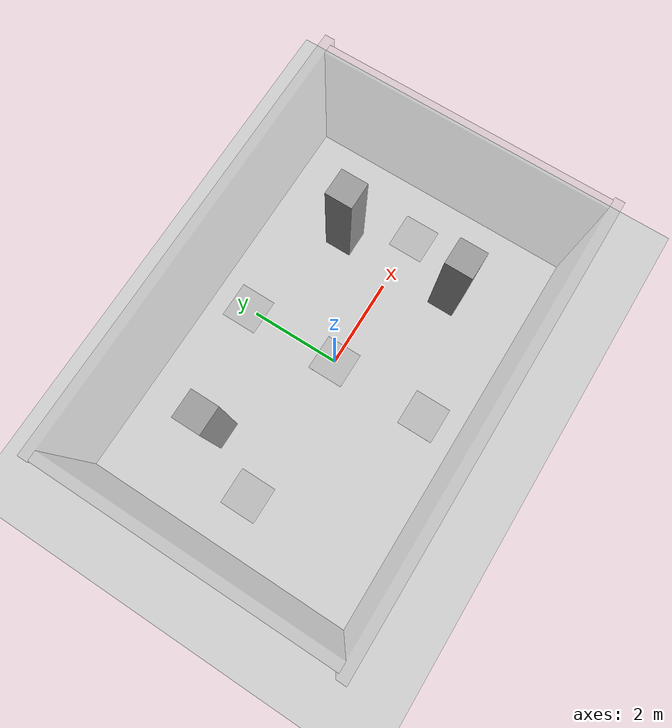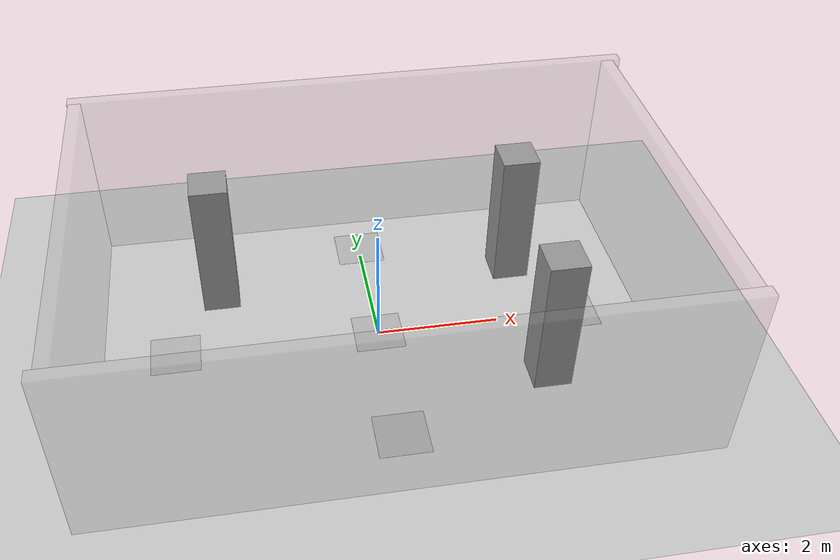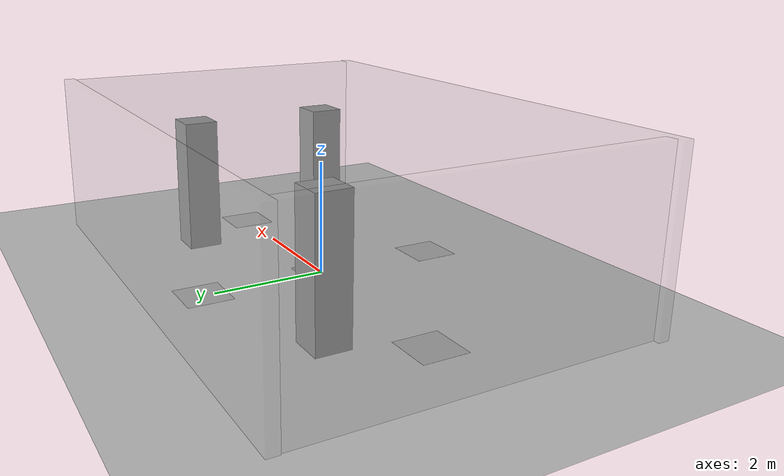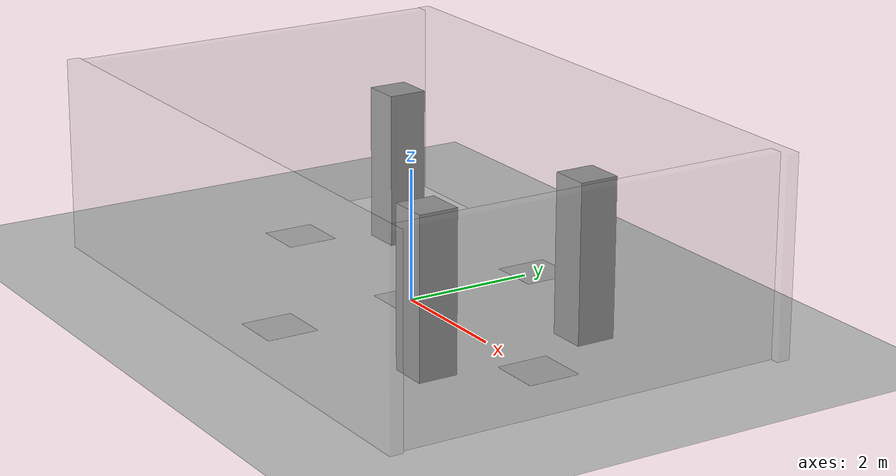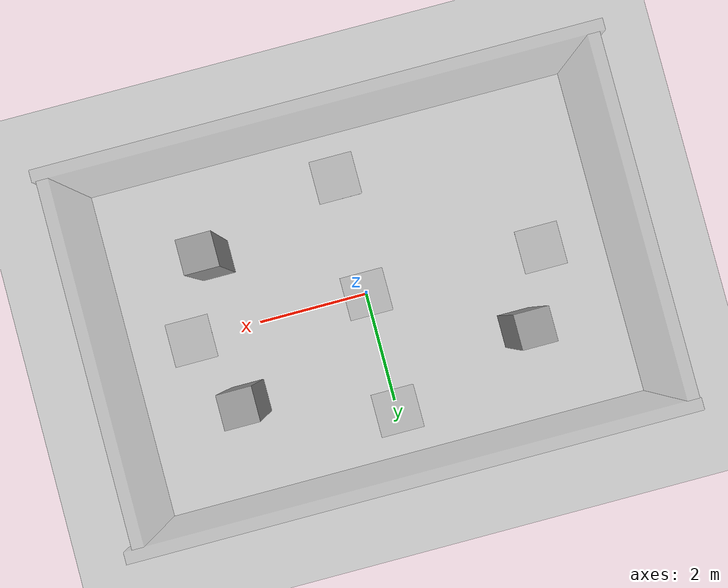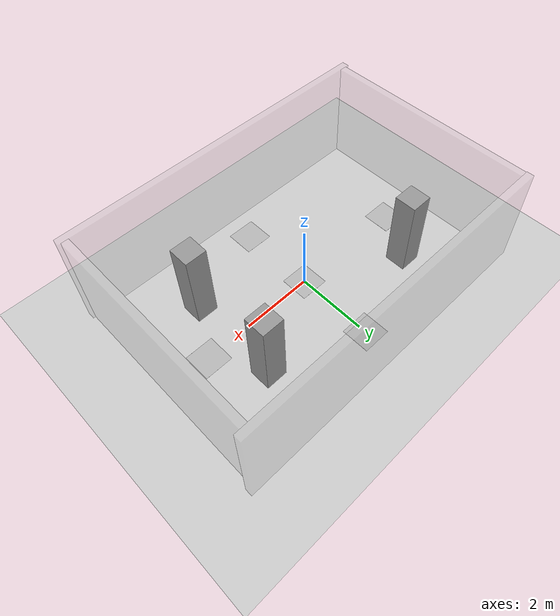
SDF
<sdf version="1.7">
 <world name="default">
  <model name="ground_plane">
   <static>1</static>
   <link name="link">
    <collision name="collision">
     <geometry><plane><normal>0 0 1</normal><size>100 100</size></plane></geometry>
     <surface><friction><ode><mu>100</mu><mu2>50</mu2></ode></friction></surface>
    </collision>
    <visual name="visual">
     <cast_shadows>0</cast_shadows>
     <geometry><plane><normal>0 0 1</normal><size>100 100</size></plane></geometry>
     <material>
      <script><uri>file://media/materials/scripts/gazebo.material</uri><name>Gazebo/Grey</name></script>
     </material>
    </visual>
   </link>
  </model>
  <gravity>0 0 -9.8</gravity>
  <magnetic_field>6e-06 2.3e-05 -4.2e-05</magnetic_field>
  <atmosphere type="adiabatic"/>
  <physics type="ode">
   <max_step_size>0.001</max_step_size>
   <real_time_factor>1</real_time_factor>
   <real_time_update_rate>1000</real_time_update_rate>
  </physics>
  <scene><ambient>0.4 0.4 0.4 1</ambient><background>0.7 0.7 0.7 1</background><shadows>1</shadows></scene>
  <spherical_coordinates>
   <surface_model>EARTH_WGS84</surface_model>
   <latitude_deg>0</latitude_deg>
   <longitude_deg>0</longitude_deg>
   <elevation>0</elevation>
   <heading_deg>0</heading_deg>
  </spherical_coordinates>
  <model name="A_H">
   <static>1</static>
   <link name="link">
    <collision name="collision">
     <geometry><plane><normal>0 0 1</normal><size>0.8 0.8</size></plane></geometry>
     <surface><friction><ode><mu>100</mu><mu2>50</mu2></ode></friction></surface>
    </collision>
    <visual name="visual">
     <cast_shadows>0</cast_shadows>
     <geometry><plane><normal>0 0 1</normal><size>0.8 0.8</size></plane></geometry>
     <material>
      <script>
       <uri>model://A_H/materials/scripts</uri>
       <uri>model://A_H/materials/textures/</uri>
       <name>A_H/A_H</name>
      </script>
     </material>
    </visual>
   </link>
   <pose>0 0 0.02 0 0 -1.5708</pose>
  </model>
  <model name="voyage_0">
   <static>1</static>
   <link name="link">
    <collision name="collision">
     <geometry><plane><normal>0 0 1</normal><size>0.8 0.8</size></plane></geometry>
     <surface><friction><ode><mu>100</mu><mu2>50</mu2></ode></friction></surface>
    </collision>
    <visual name="visual">
     <cast_shadows>0</cast_shadows>
     <geometry><plane><normal>0 0 1</normal><size>0.8 0.8</size></plane></geometry>
     <material>
      <script>
       <uri>model://voyage/materials/scripts</uri>
       <uri>model://voyage/materials/textures/</uri>
       <name>voyage/voyage</name>
      </script>
     </material>
    </visual>
   </link>
   <pose>3.3 0 0.02 0 0 -1.5708</pose>
  </model>
  <model name="voyage_1">
   <static>1</static>
   <link name="link">
    <collision name="collision">
     <geometry><plane><normal>0 0 1</normal><size>0.8 0.8</size></plane></geometry>
     <surface><friction><ode><mu>100</mu><mu2>50</mu2></ode></friction></surface>
    </collision>
    <visual name="visual">
     <cast_shadows>0</cast_shadows>
     <geometry><plane><normal>0 0 1</normal><size>0.8 0.8</size></plane></geometry>
     <material>
      <script>
       <uri>model://voyage/materials/scripts</uri>
       <uri>model://voyage/materials/textures/</uri>
       <name>voyage/voyage</name>
      </script>
     </material>
    </visual>
   </link>
   <pose>0 2.2 0.02 0 0 -1.5708</pose>
  </model>
  <model name="voyage_2">
   <static>1</static>
   <link name="link">
    <collision name="collision">
     <geometry><plane><normal>0 0 1</normal><size>0.8 0.8</size></plane></geometry>
     <surface><friction><ode><mu>100</mu><mu2>50</mu2></ode></friction></surface>
    </collision>
    <visual name="visual">
     <cast_shadows>0</cast_shadows>
     <geometry><plane><normal>0 0 1</normal><size>0.8 0.8</size></plane></geometry>
     <material>
      <script>
       <uri>model://voyage/materials/scripts</uri>
       <uri>model://voyage/materials/textures/</uri>
       <name>voyage/voyage</name>
      </script>
     </material>
    </visual>
   </link>
   <pose>-3.3 0 0.02 0 0 -1.5708</pose>
  </model>
  <model name="voyage_3">
   <static>1</static>
   <link name="link">
    <collision name="collision">
     <geometry><plane><normal>0 0 1</normal><size>0.8 0.8</size></plane></geometry>
     <surface><friction><ode><mu>100</mu><mu2>50</mu2></ode></friction></surface>
    </collision>
    <visual name="visual">
     <cast_shadows>0</cast_shadows>
     <geometry><plane><normal>0 0 1</normal><size>0.8 0.8</size></plane></geometry>
     <material>
      <script>
       <uri>model://voyage/materials/scripts</uri>
       <uri>model://voyage/materials/textures/</uri>
       <name>voyage/voyage</name>
      </script>
     </material>
    </visual>
   </link>
   <pose>0 -2.2 0.02 0 0 -1.5708</pose>
  </model>
  <model name="unit_box">
   <static>1</static>
   <pose>2.50335 -1.30057 1.2 0 -0 0</pose>
   <link name="link">
    <inertial>
     <mass>1</mass>
     <inertia>
      <ixx>0.166667</ixx>
      <ixy>0</ixy>
      <ixz>0</ixz>
      <iyy>0.166667</iyy>
      <iyz>0</iyz>
      <izz>0.166667</izz>
     </inertia>
    </inertial>
    <collision name="collision"><geometry><box><size>0.6 0.6 2.4</size></box></geometry></collision>
    <visual name="visual">
     <geometry><box><size>0.6 0.6 2.4</size></box></geometry>
     <material>
      <script><name>Gazebo/Grey</name><uri>file://media/materials/scripts/gazebo.material</uri></script>
     </material>
    </visual>
   </link>
  </model>
  <model name="Wall_0">
   <pose>-4.52947 0 0 0 -0 0</pose>
   <link name="Wall_0">
    <collision name="Wall_0_Collision">
     <geometry><box><size>6 0.2 3</size></box></geometry>
     <pose>0 0 1.5 0 -0 0</pose>
    </collision>
    <visual name="Wall_0_Visual">
     <transparency>0.9</transparency>
     <pose>0 0 1.5 0 -0 0</pose>
     <geometry><box><size>6 0.2 3</size></box></geometry>
     <material>
      <script><uri>file://media/materials/scripts/gazebo.material</uri><name>Gazebo/Grey</name></script>
      <ambient>1 1 1 1</ambient>
     </material>
     <meta><layer>0</layer></meta>
    </visual>
    <pose>0 0 0 0 -0 1.5708</pose>
   </link>
   <static>1</static>
  </model>
  <model name="Wall_0_0">
   <pose>4.50879 0 0 0 -0 0</pose>
   <link name="Wall_0">
    <collision name="Wall_0_Collision">
     <geometry><box><size>6 0.2 3</size></box></geometry>
     <pose>0 0 1.5 0 -0 0</pose>
    </collision>
    <visual name="Wall_0_Visual">
     <transparency>0.9</transparency>
     <pose>0 0 1.5 0 -0 0</pose>
     <geometry><box><size>6 0.2 3</size></box></geometry>
     <material>
      <script><uri>file://media/materials/scripts/gazebo.material</uri><name>Gazebo/Grey</name></script>
      <ambient>1 1 1 1</ambient>
     </material>
     <meta><layer>0</layer></meta>
    </visual>
    <pose>0 0 0 0 -0 1.5708</pose>
   </link>
   <static>1</static>
  </model>
  <model name="Wall_0_1">
   <pose>0.047552 3.1 0 0 -0 1.57079</pose>
   <link name="Wall_0">
    <collision name="Wall_0_Collision">
     <geometry><box><size>9.4 0.2 3</size></box></geometry>
     <pose>0 0 1.5 0 -0 0</pose>
    </collision>
    <visual name="Wall_0_Visual">
     <transparency>0.9</transparency>
     <pose>0 0 1.5 0 -0 0</pose>
     <geometry><box><size>9.4 0.2 3</size></box></geometry>
     <material>
      <script><uri>file://media/materials/scripts/gazebo.material</uri><name>Gazebo/Grey</name></script>
      <ambient>1 1 1 1</ambient>
     </material>
     <meta><layer>0</layer></meta>
    </visual>
    <pose>0 0 0 0 -0 1.5708</pose>
   </link>
   <static>1</static>
  </model>
  <model name="Wall_0_2">
   <pose>-0.026363 -3.1 0 0 -0 1.57079</pose>
   <link name="Wall_0">
    <collision name="Wall_0_Collision">
     <geometry><box><size>9.4 0.2 3</size></box></geometry>
     <pose>0 0 1.5 0 -0 0</pose>
    </collision>
    <visual name="Wall_0_Visual">
     <transparency>0.9</transparency>
     <pose>0 0 1.5 0 -0 0</pose>
     <geometry><box><size>9.4 0.2 3</size></box></geometry>
     <material>
      <script><uri>file://media/materials/scripts/gazebo.material</uri><name>Gazebo/Grey</name></script>
      <ambient>1 1 1 1</ambient>
     </material>
     <meta><layer>0</layer></meta>
    </visual>
    <pose>0 0 0 0 -0 1.5708</pose>
   </link>
   <static>1</static>
  </model>
  <model name="unit_box_clone">
   <static>1</static>
   <pose>2.50893 1.31136 1.2 0 -0 0</pose>
   <link name="link">
    <inertial>
     <mass>1</mass>
     <inertia>
      <ixx>0.166667</ixx>
      <ixy>0</ixy>
      <ixz>0</ixz>
      <iyy>0.166667</iyy>
      <iyz>0</iyz>
      <izz>0.166667</izz>
     </inertia>
    </inertial>
    <collision name="collision"><geometry><box><size>0.6 0.6 2.4</size></box></geometry></collision>
    <visual name="visual">
     <geometry><box><size>0.6 0.6 2.4</size></box></geometry>
     <material>
      <script><name>Gazebo/Grey</name><uri>file://media/materials/scripts/gazebo.material</uri></script>
     </material>
    </visual>
   </link>
  </model>
  <model name="unit_box_clone_0">
   <static>1</static>
   <pose>-2.50251 1.29757 1.2 0 -0 0</pose>
   <link name="link">
    <inertial>
     <mass>1</mass>
     <inertia>
      <ixx>0.166667</ixx>
      <ixy>0</ixy>
      <ixz>0</ixz>
      <iyy>0.166667</iyy>
      <iyz>0</iyz>
      <izz>0.166667</izz>
     </inertia>
    </inertial>
    <collision name="collision"><geometry><box><size>0.6 0.6 2.4</size></box></geometry></collision>
    <visual name="visual">
     <geometry><box><size>0.6 0.6 2.4</size></box></geometry>
     <material>
      <script><name>Gazebo/Grey</name><uri>file://media/materials/scripts/gazebo.material</uri></script>
     </material>
    </visual>
   </link>
  </model>
  <light name="user_directional_light_0" type="directional">
   <pose>-0.07617 0.151031 1 0 -0 0</pose>
   <diffuse>0.5 0.5 0.5 1</diffuse>
   <specular>0.1 0.1 0.1 1</specular>
   <direction>0.1 0.1 -0.9</direction>
   <attenuation>
    <range>20</range>
    <constant>0.5</constant>
    <linear>0.01</linear>
    <quadratic>0.001</quadratic>
   </attenuation>
  </light>
 </world>
</sdf>
